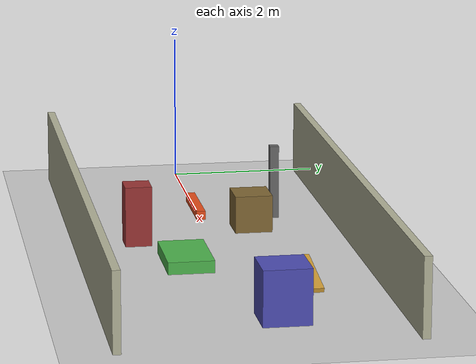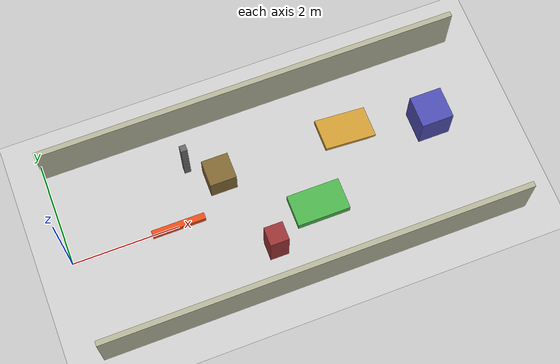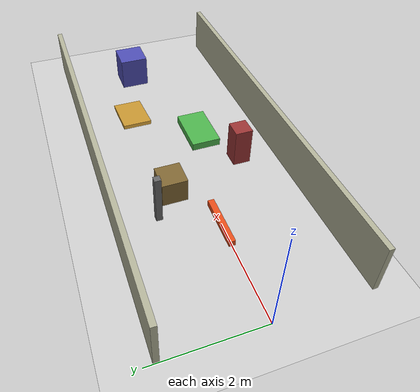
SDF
<?xml version="1.0"?>
<sdf version="1.6">
  <world name="simple_car_complex_perception">

    <include><uri>model://sun</uri></include>
    <include><uri>model://ground_plane</uri></include>

    <!-- ====== Corridor walls (x: 0–8m) ====== -->
    <model name="wall_left">
      <pose>4.0 1.8 0.5 0 0 0</pose>
      <static>true</static>
      <link name="link">
        <collision name="collision">
          <geometry><box><size>8.0 0.10 1.0</size></box></geometry>
        </collision>
        <visual name="visual">
          <geometry><box><size>8.0 0.10 1.0</size></box></geometry>
          <material>
            <ambient>0.7 0.7 0.6 1</ambient>
            <diffuse>0.7 0.7 0.6 1</diffuse>
          </material>
        </visual>
      </link>
    </model>

    <model name="wall_right">
      <pose>4.0 -1.8 0.5 0 0 0</pose>
      <static>true</static>
      <link name="link">
        <collision name="collision">
          <geometry><box><size>8.0 0.10 1.0</size></box></geometry>
        </collision>
        <visual name="visual">
          <geometry><box><size>8.0 0.10 1.0</size></box></geometry>
          <material>
            <ambient>0.7 0.7 0.6 1</ambient>
            <diffuse>0.7 0.7 0.6 1</diffuse>
          </material>
        </visual>
      </link>
    </model>

    <!-- ====== Low bar obstacle at 2m ahead ====== -->
    <model name="low_bar">
      <pose>2.0 0.0 0.06 0 0 0</pose>
      <static>true</static>
      <link name="link">
        <collision name="collision">
          <geometry><box><size>1.0 0.12 0.12</size></box></geometry>
        </collision>
        <visual name="visual">
          <geometry><box><size>1.0 0.12 0.12</size></box></geometry>
          <material>
            <ambient>0.9 0.3 0.1 1</ambient>
            <diffuse>0.9 0.3 0.1 1</diffuse>
          </material>
        </visual>
      </link>
    </model>

    <!-- ====== Box front-right ====== -->
    <model name="box_front">
      <pose>3.0 0.6 0.25 0 0 0</pose>
      <static>true</static>
      <link name="link">
        <collision name="collision">
          <geometry><box><size>0.5 0.5 0.5</size></box></geometry>
        </collision>
        <visual name="visual">
          <geometry><box><size>0.5 0.5 0.5</size></box></geometry>
          <material>
            <ambient>0.5 0.4 0.2 1</ambient>
            <diffuse>0.5 0.4 0.2 1</diffuse>
          </material>
        </visual>
      </link>
    </model>

    <!-- ====== Narrow pillar left ====== -->
    <model name="pillar_left">
      <pose>2.5 1.0 0.5 0 0 0</pose>
      <static>true</static>
      <link name="link">
        <collision name="collision">
          <geometry><box><size>0.12 0.12 1.0</size></box></geometry>
        </collision>
        <visual name="visual">
          <geometry><box><size>0.12 0.12 1.0</size></box></geometry>
          <material>
            <ambient>0.4 0.4 0.4 1</ambient>
            <diffuse>0.4 0.4 0.4 1</diffuse>
          </material>
        </visual>
      </link>
    </model>

    <!-- ====== Tall box right ====== -->
    <model name="tall_box_right">
      <pose>3.5 -1.0 0.40 0 0 0</pose>
      <static>true</static>
      <link name="link">
        <collision name="collision">
          <geometry><box><size>0.35 0.35 0.80</size></box></geometry>
        </collision>
        <visual name="visual">
          <geometry><box><size>0.35 0.35 0.80</size></box></geometry>
          <material>
            <ambient>0.6 0.2 0.2 1</ambient>
            <diffuse>0.6 0.2 0.2 1</diffuse>
          </material>
        </visual>
      </link>
    </model>

    <!-- ====== Narrow passage (gap between walls) ====== -->
    <!-- wall_left and wall_right already form a corridor -->

    <!-- ====== Step box ====== -->
    <model name="step_box">
      <pose>4.5 -0.5 0.08 0 0 0</pose>
      <static>true</static>
      <link name="link">
        <collision name="collision">
          <geometry><box><size>1.0 0.6 0.16</size></box></geometry>
        </collision>
        <visual name="visual">
          <geometry><box><size>1.0 0.6 0.16</size></box></geometry>
          <material>
            <ambient>0.3 0.7 0.3 1</ambient>
            <diffuse>0.3 0.7 0.3 1</diffuse>
          </material>
        </visual>
      </link>
    </model>

    <!-- ====== Slope plate (tilted for traversability height test) ====== -->
    <model name="slope_plate">
      <pose>5.5 0.7 0.08 0 0.15 0</pose>
      <static>true</static>
      <link name="link">
        <collision name="collision">
          <geometry><box><size>1.0 0.6 0.08</size></box></geometry>
        </collision>
        <visual name="visual">
          <geometry><box><size>1.0 0.6 0.08</size></box></geometry>
          <material>
            <ambient>0.8 0.6 0.2 1</ambient>
            <diffuse>0.8 0.6 0.2 1</diffuse>
          </material>
        </visual>
      </link>
    </model>

    <!-- ====== Far obstacle at 7m ====== -->
    <model name="far_box">
      <pose>7.0 0.3 0.35 0 0 0</pose>
      <static>true</static>
      <link name="link">
        <collision name="collision">
          <geometry><box><size>0.6 0.6 0.7</size></box></geometry>
        </collision>
        <visual name="visual">
          <geometry><box><size>0.6 0.6 0.7</size></box></geometry>
          <material>
            <ambient>0.3 0.3 0.7 1</ambient>
            <diffuse>0.3 0.3 0.7 1</diffuse>
          </material>
        </visual>
      </link>
    </model>

  </world>
</sdf>
